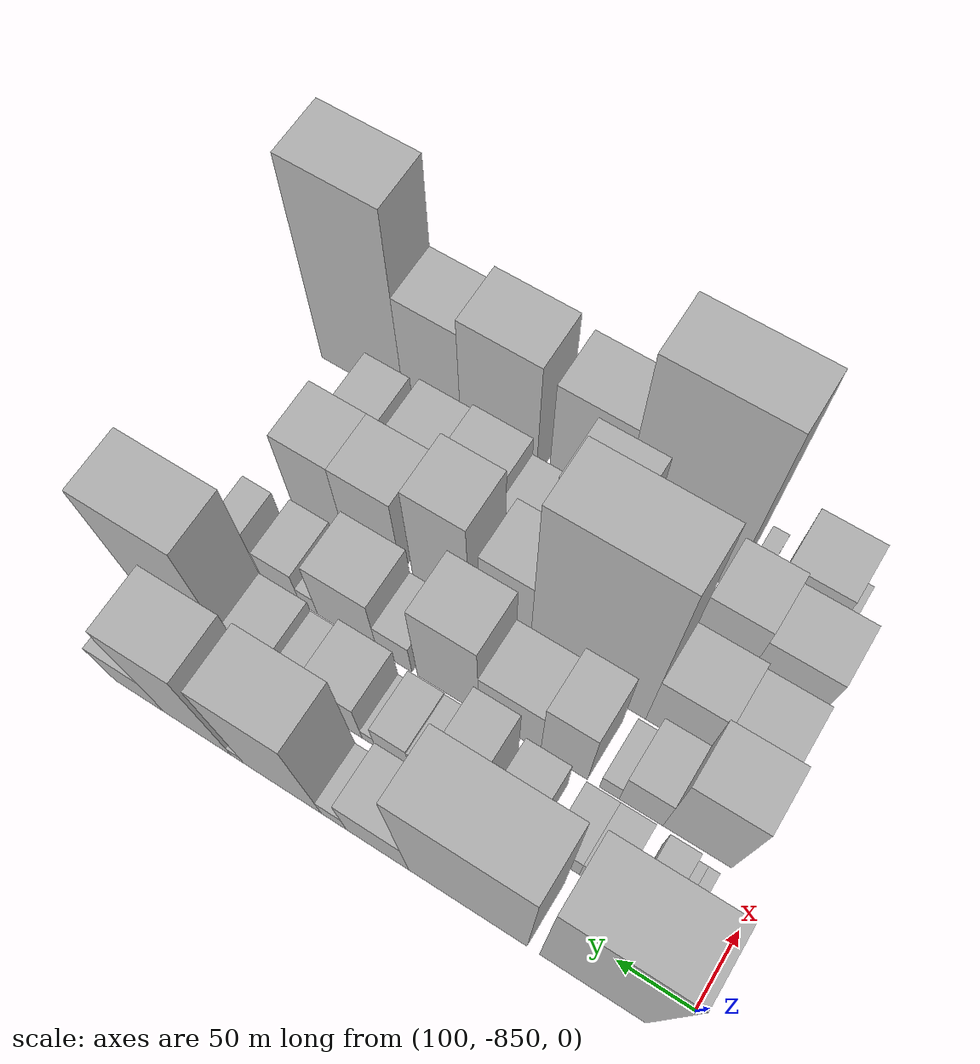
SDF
<sdf version="1.6">
 <world name="default">
  <model name="building_1">
   <static>1</static>
   <pose>100.0000 -796.0572 0 0.000000 0.000000 0.000000</pose>
   <link name="link">
    <pose>0 0 111.00 0 0 0</pose>
    <collision name="collision"><geometry><box><size>40.0000 67.8856 222.0000</size></box></geometry></collision>
    <visual name="visual">
     <cast_shadows>0</cast_shadows>
     <geometry><box><size>40.0000 67.8856 222.0000</size></box></geometry>
     <material>
      <script>
       <uri>model://HANNAS_wall/materials/scripts</uri>
       <uri>model://HANNAS_wall/materials/textures</uri>
       <name>vrc/HANNAS_wall</name>
      </script>
     </material>
    </visual>
   </link>
  </model>
  <model name="building_2">
   <static>1</static>
   <pose>100.0000 -714.7521 0 0.000000 0.000000 0.000000</pose>
   <link name="link">
    <pose>0 0 106.50 0 0 0</pose>
    <collision name="collision"><geometry><box><size>40.0000 78.7246 213.0000</size></box></geometry></collision>
    <visual name="visual">
     <cast_shadows>0</cast_shadows>
     <geometry><box><size>40.0000 78.7246 213.0000</size></box></geometry>
     <material>
      <script>
       <uri>model://HANNAS_wall/materials/scripts</uri>
       <uri>model://HANNAS_wall/materials/textures</uri>
       <name>vrc/HANNAS_wall</name>
      </script>
     </material>
    </visual>
   </link>
  </model>
  <model name="building_3">
   <static>1</static>
   <pose>100.0000 -654.1740 0 0.000000 0.000000 0.000000</pose>
   <link name="link">
    <pose>0 0 37.50 0 0 0</pose>
    <collision name="collision"><geometry><box><size>40.0000 42.4316 75.0000</size></box></geometry></collision>
    <visual name="visual">
     <cast_shadows>0</cast_shadows>
     <geometry><box><size>40.0000 42.4316 75.0000</size></box></geometry>
     <material>
      <script>
       <uri>model://HANNAS_wall/materials/scripts</uri>
       <uri>model://HANNAS_wall/materials/textures</uri>
       <name>vrc/HANNAS_wall</name>
      </script>
     </material>
    </visual>
   </link>
  </model>
  <model name="building_4">
   <static>1</static>
   <pose>100.0000 -624.2647 0 0.000000 0.000000 0.000000</pose>
   <link name="link">
    <pose>0 0 16.50 0 0 0</pose>
    <collision name="collision"><geometry><box><size>40.0000 17.3870 33.0000</size></box></geometry></collision>
    <visual name="visual">
     <cast_shadows>0</cast_shadows>
     <geometry><box><size>40.0000 17.3870 33.0000</size></box></geometry>
     <material>
      <script>
       <uri>model://HANNAS_wall/materials/scripts</uri>
       <uri>model://HANNAS_wall/materials/textures</uri>
       <name>vrc/HANNAS_wall</name>
      </script>
     </material>
    </visual>
   </link>
  </model>
  <model name="building_5">
   <static>1</static>
   <pose>100.0000 -588.1427 0 0.000000 0.000000 0.000000</pose>
   <link name="link">
    <pose>0 0 81.00 0 0 0</pose>
    <collision name="collision"><geometry><box><size>40.0000 54.8569 162.0000</size></box></geometry></collision>
    <visual name="visual">
     <cast_shadows>0</cast_shadows>
     <geometry><box><size>40.0000 54.8569 162.0000</size></box></geometry>
     <material>
      <script>
       <uri>model://HANNAS_wall/materials/scripts</uri>
       <uri>model://HANNAS_wall/materials/textures</uri>
       <name>vrc/HANNAS_wall</name>
      </script>
     </material>
    </visual>
   </link>
  </model>
  <model name="building_6">
   <static>1</static>
   <pose>100.0000 -556.2341 0 0.000000 0.000000 0.000000</pose>
   <link name="link">
    <pose>0 0 9.00 0 0 0</pose>
    <collision name="collision"><geometry><box><size>40.0000 8.9603 18.0000</size></box></geometry></collision>
    <visual name="visual">
     <cast_shadows>0</cast_shadows>
     <geometry><box><size>40.0000 8.9603 18.0000</size></box></geometry>
     <material>
      <script>
       <uri>model://HANNAS_wall/materials/scripts</uri>
       <uri>model://HANNAS_wall/materials/textures</uri>
       <name>vrc/HANNAS_wall</name>
      </script>
     </material>
    </visual>
   </link>
  </model>
  <model name="building_7">
   <static>1</static>
   <pose>100.0000 -527.5284 0 0.000000 0.000000 0.000000</pose>
   <link name="link">
    <pose>0 0 79.50 0 0 0</pose>
    <collision name="collision"><geometry><box><size>40.0000 48.4513 159.0000</size></box></geometry></collision>
    <visual name="visual">
     <cast_shadows>0</cast_shadows>
     <geometry><box><size>40.0000 48.4513 159.0000</size></box></geometry>
     <material>
      <script>
       <uri>model://HANNAS_wall/materials/scripts</uri>
       <uri>model://HANNAS_wall/materials/textures</uri>
       <name>vrc/HANNAS_wall</name>
      </script>
     </material>
    </visual>
   </link>
  </model>
  <model name="building_8">
   <static>1</static>
   <pose>100.0000 -484.7975 0 0.000000 0.000000 0.000000</pose>
   <link name="link">
    <pose>0 0 33.00 0 0 0</pose>
    <collision name="collision"><geometry><box><size>40.0000 37.0104 66.0000</size></box></geometry></collision>
    <visual name="visual">
     <cast_shadows>0</cast_shadows>
     <geometry><box><size>40.0000 37.0104 66.0000</size></box></geometry>
     <material>
      <script>
       <uri>model://HANNAS_wall/materials/scripts</uri>
       <uri>model://HANNAS_wall/materials/textures</uri>
       <name>vrc/HANNAS_wall</name>
      </script>
     </material>
    </visual>
   </link>
  </model>
  <model name="building_56">
   <static>1</static>
   <pose>149.0000 -821.3005 0 0.000000 0.000000 0.000000</pose>
   <link name="link">
    <pose>0 0 7.50 0 0 0</pose>
    <collision name="collision"><geometry><box><size>40.0000 7.3990 15.0000</size></box></geometry></collision>
    <visual name="visual">
     <cast_shadows>0</cast_shadows>
     <geometry><box><size>40.0000 7.3990 15.0000</size></box></geometry>
     <material>
      <script>
       <uri>model://HANNAS_wall/materials/scripts</uri>
       <uri>model://HANNAS_wall/materials/textures</uri>
       <name>vrc/HANNAS_wall</name>
      </script>
     </material>
    </visual>
   </link>
  </model>
  <model name="building_57">
   <static>1</static>
   <pose>149.0000 -813.9377 0 0.000000 0.000000 0.000000</pose>
   <link name="link">
    <pose>0 0 7.50 0 0 0</pose>
    <collision name="collision"><geometry><box><size>40.0000 7.3267 15.0000</size></box></geometry></collision>
    <visual name="visual">
     <cast_shadows>0</cast_shadows>
     <geometry><box><size>40.0000 7.3267 15.0000</size></box></geometry>
     <material>
      <script>
       <uri>model://HANNAS_wall/materials/scripts</uri>
       <uri>model://HANNAS_wall/materials/textures</uri>
       <name>vrc/HANNAS_wall</name>
      </script>
     </material>
    </visual>
   </link>
  </model>
  <model name="building_58">
   <static>1</static>
   <pose>149.0000 -800.3064 0 0.000000 0.000000 0.000000</pose>
   <link name="link">
    <pose>0 0 18.00 0 0 0</pose>
    <collision name="collision"><geometry><box><size>40.0000 19.9360 36.0000</size></box></geometry></collision>
    <visual name="visual">
     <cast_shadows>0</cast_shadows>
     <geometry><box><size>40.0000 19.9360 36.0000</size></box></geometry>
     <material>
      <script>
       <uri>model://HANNAS_wall/materials/scripts</uri>
       <uri>model://HANNAS_wall/materials/textures</uri>
       <name>vrc/HANNAS_wall</name>
      </script>
     </material>
    </visual>
   </link>
  </model>
  <model name="building_59">
   <static>1</static>
   <pose>149.0000 -769.9749 0 0.000000 0.000000 0.000000</pose>
   <link name="link">
    <pose>0 0 19.50 0 0 0</pose>
    <collision name="collision"><geometry><box><size>40.0000 22.7270 39.0000</size></box></geometry></collision>
    <visual name="visual">
     <cast_shadows>0</cast_shadows>
     <geometry><box><size>40.0000 22.7270 39.0000</size></box></geometry>
     <material>
      <script>
       <uri>model://HANNAS_wall/materials/scripts</uri>
       <uri>model://HANNAS_wall/materials/textures</uri>
       <name>vrc/HANNAS_wall</name>
      </script>
     </material>
    </visual>
   </link>
  </model>
  <model name="building_60">
   <static>1</static>
   <pose>149.0000 -747.7355 0 0.000000 0.000000 0.000000</pose>
   <link name="link">
    <pose>0 0 19.50 0 0 0</pose>
    <collision name="collision"><geometry><box><size>40.0000 21.7517 39.0000</size></box></geometry></collision>
    <visual name="visual">
     <cast_shadows>0</cast_shadows>
     <geometry><box><size>40.0000 21.7517 39.0000</size></box></geometry>
     <material>
      <script>
       <uri>model://HANNAS_wall/materials/scripts</uri>
       <uri>model://HANNAS_wall/materials/textures</uri>
       <name>vrc/HANNAS_wall</name>
      </script>
     </material>
    </visual>
   </link>
  </model>
  <model name="building_61">
   <static>1</static>
   <pose>149.0000 -712.1185 0 0.000000 0.000000 0.000000</pose>
   <link name="link">
    <pose>0 0 27.00 0 0 0</pose>
    <collision name="collision"><geometry><box><size>40.0000 29.4824 54.0000</size></box></geometry></collision>
    <visual name="visual">
     <cast_shadows>0</cast_shadows>
     <geometry><box><size>40.0000 29.4824 54.0000</size></box></geometry>
     <material>
      <script>
       <uri>model://HANNAS_wall/materials/scripts</uri>
       <uri>model://HANNAS_wall/materials/textures</uri>
       <name>vrc/HANNAS_wall</name>
      </script>
     </material>
    </visual>
   </link>
  </model>
  <model name="building_62">
   <static>1</static>
   <pose>149.0000 -678.7876 0 0.000000 0.000000 0.000000</pose>
   <link name="link">
    <pose>0 0 48.00 0 0 0</pose>
    <collision name="collision"><geometry><box><size>40.0000 29.1794 96.0000</size></box></geometry></collision>
    <visual name="visual">
     <cast_shadows>0</cast_shadows>
     <geometry><box><size>40.0000 29.1794 96.0000</size></box></geometry>
     <material>
      <script>
       <uri>model://HANNAS_wall/materials/scripts</uri>
       <uri>model://HANNAS_wall/materials/textures</uri>
       <name>vrc/HANNAS_wall</name>
      </script>
     </material>
    </visual>
   </link>
  </model>
  <model name="building_63">
   <static>1</static>
   <pose>149.0000 -654.0382 0 0.000000 0.000000 0.000000</pose>
   <link name="link">
    <pose>0 0 19.50 0 0 0</pose>
    <collision name="collision"><geometry><box><size>40.0000 20.3195 39.0000</size></box></geometry></collision>
    <visual name="visual">
     <cast_shadows>0</cast_shadows>
     <geometry><box><size>40.0000 20.3195 39.0000</size></box></geometry>
     <material>
      <script>
       <uri>model://HANNAS_wall/materials/scripts</uri>
       <uri>model://HANNAS_wall/materials/textures</uri>
       <name>vrc/HANNAS_wall</name>
      </script>
     </material>
    </visual>
   </link>
  </model>
  <model name="building_64">
   <static>1</static>
   <pose>149.0000 -631.6424 0 0.000000 0.000000 0.000000</pose>
   <link name="link">
    <pose>0 0 21.00 0 0 0</pose>
    <collision name="collision"><geometry><box><size>40.0000 24.4722 42.0000</size></box></geometry></collision>
    <visual name="visual">
     <cast_shadows>0</cast_shadows>
     <geometry><box><size>40.0000 24.4722 42.0000</size></box></geometry>
     <material>
      <script>
       <uri>model://HANNAS_wall/materials/scripts</uri>
       <uri>model://HANNAS_wall/materials/textures</uri>
       <name>vrc/HANNAS_wall</name>
      </script>
     </material>
    </visual>
   </link>
  </model>
  <model name="building_65">
   <static>1</static>
   <pose>149.0000 -615.0078 0 0.000000 0.000000 0.000000</pose>
   <link name="link">
    <pose>0 0 9.00 0 0 0</pose>
    <collision name="collision"><geometry><box><size>40.0000 8.7971 18.0000</size></box></geometry></collision>
    <visual name="visual">
     <cast_shadows>0</cast_shadows>
     <geometry><box><size>40.0000 8.7971 18.0000</size></box></geometry>
     <material>
      <script>
       <uri>model://HANNAS_wall/materials/scripts</uri>
       <uri>model://HANNAS_wall/materials/textures</uri>
       <name>vrc/HANNAS_wall</name>
      </script>
     </material>
    </visual>
   </link>
  </model>
  <model name="building_66">
   <static>1</static>
   <pose>149.0000 -592.6483 0 0.000000 0.000000 0.000000</pose>
   <link name="link">
    <pose>0 0 31.50 0 0 0</pose>
    <collision name="collision"><geometry><box><size>40.0000 35.9217 63.0000</size></box></geometry></collision>
    <visual name="visual">
     <cast_shadows>0</cast_shadows>
     <geometry><box><size>40.0000 35.9217 63.0000</size></box></geometry>
     <material>
      <script>
       <uri>model://HANNAS_wall/materials/scripts</uri>
       <uri>model://HANNAS_wall/materials/textures</uri>
       <name>vrc/HANNAS_wall</name>
      </script>
     </material>
    </visual>
   </link>
  </model>
  <model name="building_67">
   <static>1</static>
   <pose>149.0000 -563.5514 0 0.000000 0.000000 0.000000</pose>
   <link name="link">
    <pose>0 0 21.00 0 0 0</pose>
    <collision name="collision"><geometry><box><size>40.0000 22.2722 42.0000</size></box></geometry></collision>
    <visual name="visual">
     <cast_shadows>0</cast_shadows>
     <geometry><box><size>40.0000 22.2722 42.0000</size></box></geometry>
     <material>
      <script>
       <uri>model://HANNAS_wall/materials/scripts</uri>
       <uri>model://HANNAS_wall/materials/textures</uri>
       <name>vrc/HANNAS_wall</name>
      </script>
     </material>
    </visual>
   </link>
  </model>
  <model name="building_68">
   <static>1</static>
   <pose>149.0000 -535.8548 0 0.000000 0.000000 0.000000</pose>
   <link name="link">
    <pose>0 0 28.50 0 0 0</pose>
    <collision name="collision"><geometry><box><size>40.0000 33.1210 57.0000</size></box></geometry></collision>
    <visual name="visual">
     <cast_shadows>0</cast_shadows>
     <geometry><box><size>40.0000 33.1210 57.0000</size></box></geometry>
     <material>
      <script>
       <uri>model://HANNAS_wall/materials/scripts</uri>
       <uri>model://HANNAS_wall/materials/textures</uri>
       <name>vrc/HANNAS_wall</name>
      </script>
     </material>
    </visual>
   </link>
  </model>
  <model name="building_69">
   <static>1</static>
   <pose>149.0000 -487.6769 0 0.000000 0.000000 0.000000</pose>
   <link name="link">
    <pose>0 0 87.00 0 0 0</pose>
    <collision name="collision"><geometry><box><size>40.0000 63.2347 174.0000</size></box></geometry></collision>
    <visual name="visual">
     <cast_shadows>0</cast_shadows>
     <geometry><box><size>40.0000 63.2347 174.0000</size></box></geometry>
     <material>
      <script>
       <uri>model://HANNAS_wall/materials/scripts</uri>
       <uri>model://HANNAS_wall/materials/textures</uri>
       <name>vrc/HANNAS_wall</name>
      </script>
     </material>
    </visual>
   </link>
  </model>
  <model name="building_114">
   <static>1</static>
   <pose>198.0000 -807.6028 0 0.000000 0.000000 0.000000</pose>
   <link name="link">
    <pose>0 0 58.50 0 0 0</pose>
    <collision name="collision"><geometry><box><size>40.0000 44.7943 117.0000</size></box></geometry></collision>
    <visual name="visual">
     <cast_shadows>0</cast_shadows>
     <geometry><box><size>40.0000 44.7943 117.0000</size></box></geometry>
     <material>
      <script>
       <uri>model://HANNAS_wall/materials/scripts</uri>
       <uri>model://HANNAS_wall/materials/textures</uri>
       <name>vrc/HANNAS_wall</name>
      </script>
     </material>
    </visual>
   </link>
  </model>
  <model name="building_115">
   <static>1</static>
   <pose>198.0000 -770.7115 0 0.000000 0.000000 0.000000</pose>
   <link name="link">
    <pose>0 0 28.50 0 0 0</pose>
    <collision name="collision"><geometry><box><size>40.0000 28.9883 57.0000</size></box></geometry></collision>
    <visual name="visual">
     <cast_shadows>0</cast_shadows>
     <geometry><box><size>40.0000 28.9883 57.0000</size></box></geometry>
     <material>
      <script>
       <uri>model://HANNAS_wall/materials/scripts</uri>
       <uri>model://HANNAS_wall/materials/textures</uri>
       <name>vrc/HANNAS_wall</name>
      </script>
     </material>
    </visual>
   </link>
  </model>
  <model name="building_116">
   <static>1</static>
   <pose>198.0000 -749.5972 0 0.000000 0.000000 0.000000</pose>
   <link name="link">
    <pose>0 0 13.50 0 0 0</pose>
    <collision name="collision"><geometry><box><size>40.0000 13.2402 27.0000</size></box></geometry></collision>
    <visual name="visual">
     <cast_shadows>0</cast_shadows>
     <geometry><box><size>40.0000 13.2402 27.0000</size></box></geometry>
     <material>
      <script>
       <uri>model://HANNAS_wall/materials/scripts</uri>
       <uri>model://HANNAS_wall/materials/textures</uri>
       <name>vrc/HANNAS_wall</name>
      </script>
     </material>
    </visual>
   </link>
  </model>
  <model name="building_117">
   <static>1</static>
   <pose>198.0000 -719.0356 0 0.000000 0.000000 0.000000</pose>
   <link name="link">
    <pose>0 0 48.00 0 0 0</pose>
    <collision name="collision"><geometry><box><size>40.0000 31.8829 96.0000</size></box></geometry></collision>
    <visual name="visual">
     <cast_shadows>0</cast_shadows>
     <geometry><box><size>40.0000 31.8829 96.0000</size></box></geometry>
     <material>
      <script>
       <uri>model://HANNAS_wall/materials/scripts</uri>
       <uri>model://HANNAS_wall/materials/textures</uri>
       <name>vrc/HANNAS_wall</name>
      </script>
     </material>
    </visual>
   </link>
  </model>
  <model name="building_118">
   <static>1</static>
   <pose>198.0000 -681.9346 0 0.000000 0.000000 0.000000</pose>
   <link name="link">
    <pose>0 0 37.50 0 0 0</pose>
    <collision name="collision"><geometry><box><size>40.0000 42.3192 75.0000</size></box></geometry></collision>
    <visual name="visual">
     <cast_shadows>0</cast_shadows>
     <geometry><box><size>40.0000 42.3192 75.0000</size></box></geometry>
     <material>
      <script>
       <uri>model://HANNAS_wall/materials/scripts</uri>
       <uri>model://HANNAS_wall/materials/textures</uri>
       <name>vrc/HANNAS_wall</name>
      </script>
     </material>
    </visual>
   </link>
  </model>
  <model name="building_119">
   <static>1</static>
   <pose>198.0000 -639.0371 0 0.000000 0.000000 0.000000</pose>
   <link name="link">
    <pose>0 0 60.00 0 0 0</pose>
    <collision name="collision"><geometry><box><size>40.0000 43.4757 120.0000</size></box></geometry></collision>
    <visual name="visual">
     <cast_shadows>0</cast_shadows>
     <geometry><box><size>40.0000 43.4757 120.0000</size></box></geometry>
     <material>
      <script>
       <uri>model://HANNAS_wall/materials/scripts</uri>
       <uri>model://HANNAS_wall/materials/textures</uri>
       <name>vrc/HANNAS_wall</name>
      </script>
     </material>
    </visual>
   </link>
  </model>
  <model name="building_120">
   <static>1</static>
   <pose>198.0000 -600.9243 0 0.000000 0.000000 0.000000</pose>
   <link name="link">
    <pose>0 0 22.50 0 0 0</pose>
    <collision name="collision"><geometry><box><size>40.0000 24.7499 45.0000</size></box></geometry></collision>
    <visual name="visual">
     <cast_shadows>0</cast_shadows>
     <geometry><box><size>40.0000 24.7499 45.0000</size></box></geometry>
     <material>
      <script>
       <uri>model://HANNAS_wall/materials/scripts</uri>
       <uri>model://HANNAS_wall/materials/textures</uri>
       <name>vrc/HANNAS_wall</name>
      </script>
     </material>
    </visual>
   </link>
  </model>
  <model name="building_121">
   <static>1</static>
   <pose>198.0000 -566.7464 0 0.000000 0.000000 0.000000</pose>
   <link name="link">
    <pose>0 0 40.50 0 0 0</pose>
    <collision name="collision"><geometry><box><size>40.0000 43.6058 81.0000</size></box></geometry></collision>
    <visual name="visual">
     <cast_shadows>0</cast_shadows>
     <geometry><box><size>40.0000 43.6058 81.0000</size></box></geometry>
     <material>
      <script>
       <uri>model://HANNAS_wall/materials/scripts</uri>
       <uri>model://HANNAS_wall/materials/textures</uri>
       <name>vrc/HANNAS_wall</name>
      </script>
     </material>
    </visual>
   </link>
  </model>
  <model name="building_122">
   <static>1</static>
   <pose>198.0000 -538.5956 0 0.000000 0.000000 0.000000</pose>
   <link name="link">
    <pose>0 0 13.50 0 0 0</pose>
    <collision name="collision"><geometry><box><size>40.0000 12.6959 27.0000</size></box></geometry></collision>
    <visual name="visual">
     <cast_shadows>0</cast_shadows>
     <geometry><box><size>40.0000 12.6959 27.0000</size></box></geometry>
     <material>
      <script>
       <uri>model://HANNAS_wall/materials/scripts</uri>
       <uri>model://HANNAS_wall/materials/textures</uri>
       <name>vrc/HANNAS_wall</name>
      </script>
     </material>
    </visual>
   </link>
  </model>
  <model name="building_123">
   <static>1</static>
   <pose>198.0000 -518.4218 0 0.000000 0.000000 0.000000</pose>
   <link name="link">
    <pose>0 0 24.00 0 0 0</pose>
    <collision name="collision"><geometry><box><size>40.0000 27.6515 48.0000</size></box></geometry></collision>
    <visual name="visual">
     <cast_shadows>0</cast_shadows>
     <geometry><box><size>40.0000 27.6515 48.0000</size></box></geometry>
     <material>
      <script>
       <uri>model://HANNAS_wall/materials/scripts</uri>
       <uri>model://HANNAS_wall/materials/textures</uri>
       <name>vrc/HANNAS_wall</name>
      </script>
     </material>
    </visual>
   </link>
  </model>
  <model name="building_124">
   <static>1</static>
   <pose>198.0000 -499.5554 0 0.000000 0.000000 0.000000</pose>
   <link name="link">
    <pose>0 0 10.50 0 0 0</pose>
    <collision name="collision"><geometry><box><size>40.0000 10.0814 21.0000</size></box></geometry></collision>
    <visual name="visual">
     <cast_shadows>0</cast_shadows>
     <geometry><box><size>40.0000 10.0814 21.0000</size></box></geometry>
     <material>
      <script>
       <uri>model://HANNAS_wall/materials/scripts</uri>
       <uri>model://HANNAS_wall/materials/textures</uri>
       <name>vrc/HANNAS_wall</name>
      </script>
     </material>
    </visual>
   </link>
  </model>
  <model name="building_125">
   <static>1</static>
   <pose>198.0000 -478.9829 0 0.000000 0.000000 0.000000</pose>
   <link name="link">
    <pose>0 0 19.50 0 0 0</pose>
    <collision name="collision"><geometry><box><size>40.0000 21.0635 39.0000</size></box></geometry></collision>
    <visual name="visual">
     <cast_shadows>0</cast_shadows>
     <geometry><box><size>40.0000 21.0635 39.0000</size></box></geometry>
     <material>
      <script>
       <uri>model://HANNAS_wall/materials/scripts</uri>
       <uri>model://HANNAS_wall/materials/textures</uri>
       <name>vrc/HANNAS_wall</name>
      </script>
     </material>
    </visual>
   </link>
  </model>
  <model name="building_161">
   <static>1</static>
   <pose>247.0000 -809.8048 0 0.000000 0.000000 0.000000</pose>
   <link name="link">
    <pose>0 0 36.00 0 0 0</pose>
    <collision name="collision"><geometry><box><size>40.0000 40.3903 72.0000</size></box></geometry></collision>
    <visual name="visual">
     <cast_shadows>0</cast_shadows>
     <geometry><box><size>40.0000 40.3903 72.0000</size></box></geometry>
     <material>
      <script>
       <uri>model://HANNAS_wall/materials/scripts</uri>
       <uri>model://HANNAS_wall/materials/textures</uri>
       <name>vrc/HANNAS_wall</name>
      </script>
     </material>
    </visual>
   </link>
  </model>
  <model name="building_162">
   <static>1</static>
   <pose>247.0000 -767.6513 0 0.000000 0.000000 0.000000</pose>
   <link name="link">
    <pose>0 0 40.50 0 0 0</pose>
    <collision name="collision"><geometry><box><size>40.0000 43.9168 81.0000</size></box></geometry></collision>
    <visual name="visual">
     <cast_shadows>0</cast_shadows>
     <geometry><box><size>40.0000 43.9168 81.0000</size></box></geometry>
     <material>
      <script>
       <uri>model://HANNAS_wall/materials/scripts</uri>
       <uri>model://HANNAS_wall/materials/textures</uri>
       <name>vrc/HANNAS_wall</name>
      </script>
     </material>
    </visual>
   </link>
  </model>
  <model name="building_163">
   <static>1</static>
   <pose>247.0000 -705.6306 0 0.000000 0.000000 0.000000</pose>
   <link name="link">
    <pose>0 0 111.00 0 0 0</pose>
    <collision name="collision"><geometry><box><size>40.0000 80.1246 222.0000</size></box></geometry></collision>
    <visual name="visual">
     <cast_shadows>0</cast_shadows>
     <geometry><box><size>40.0000 80.1246 222.0000</size></box></geometry>
     <material>
      <script>
       <uri>model://HANNAS_wall/materials/scripts</uri>
       <uri>model://HANNAS_wall/materials/textures</uri>
       <name>vrc/HANNAS_wall</name>
      </script>
     </material>
    </visual>
   </link>
  </model>
  <model name="building_164">
   <static>1</static>
   <pose>247.0000 -647.9016 0 0.000000 0.000000 0.000000</pose>
   <link name="link">
    <pose>0 0 54.00 0 0 0</pose>
    <collision name="collision"><geometry><box><size>40.0000 35.3334 108.0000</size></box></geometry></collision>
    <visual name="visual">
     <cast_shadows>0</cast_shadows>
     <geometry><box><size>40.0000 35.3334 108.0000</size></box></geometry>
     <material>
      <script>
       <uri>model://HANNAS_wall/materials/scripts</uri>
       <uri>model://HANNAS_wall/materials/textures</uri>
       <name>vrc/HANNAS_wall</name>
      </script>
     </material>
    </visual>
   </link>
  </model>
  <model name="building_165">
   <static>1</static>
   <pose>247.0000 -602.8267 0 0.000000 0.000000 0.000000</pose>
   <link name="link">
    <pose>0 0 67.50 0 0 0</pose>
    <collision name="collision"><geometry><box><size>40.0000 40.8166 135.0000</size></box></geometry></collision>
    <visual name="visual">
     <cast_shadows>0</cast_shadows>
     <geometry><box><size>40.0000 40.8166 135.0000</size></box></geometry>
     <material>
      <script>
       <uri>model://HANNAS_wall/materials/scripts</uri>
       <uri>model://HANNAS_wall/materials/textures</uri>
       <name>vrc/HANNAS_wall</name>
      </script>
     </material>
    </visual>
   </link>
  </model>
  <model name="building_166">
   <static>1</static>
   <pose>247.0000 -552.7730 0 0.000000 0.000000 0.000000</pose>
   <link name="link">
    <pose>0 0 52.50 0 0 0</pose>
    <collision name="collision"><geometry><box><size>40.0000 41.2906 105.0000</size></box></geometry></collision>
    <visual name="visual">
     <cast_shadows>0</cast_shadows>
     <geometry><box><size>40.0000 41.2906 105.0000</size></box></geometry>
     <material>
      <script>
       <uri>model://HANNAS_wall/materials/scripts</uri>
       <uri>model://HANNAS_wall/materials/textures</uri>
       <name>vrc/HANNAS_wall</name>
      </script>
     </material>
    </visual>
   </link>
  </model>
  <model name="building_167">
   <static>1</static>
   <pose>247.0000 -512.7693 0 0.000000 0.000000 0.000000</pose>
   <link name="link">
    <pose>0 0 52.50 0 0 0</pose>
    <collision name="collision"><geometry><box><size>40.0000 38.7169 105.0000</size></box></geometry></collision>
    <visual name="visual">
     <cast_shadows>0</cast_shadows>
     <geometry><box><size>40.0000 38.7169 105.0000</size></box></geometry>
     <material>
      <script>
       <uri>model://HANNAS_wall/materials/scripts</uri>
       <uri>model://HANNAS_wall/materials/textures</uri>
       <name>vrc/HANNAS_wall</name>
      </script>
     </material>
    </visual>
   </link>
  </model>
  <model name="building_204">
   <static>1</static>
   <pose>296.0000 -806.8379 0 0.000000 0.000000 0.000000</pose>
   <link name="link">
    <pose>0 0 42.00 0 0 0</pose>
    <collision name="collision"><geometry><box><size>40.0000 46.3241 84.0000</size></box></geometry></collision>
    <visual name="visual">
     <cast_shadows>0</cast_shadows>
     <geometry><box><size>40.0000 46.3241 84.0000</size></box></geometry>
     <material>
      <script>
       <uri>model://HANNAS_wall/materials/scripts</uri>
       <uri>model://HANNAS_wall/materials/textures</uri>
       <name>vrc/HANNAS_wall</name>
      </script>
     </material>
    </visual>
   </link>
  </model>
  <model name="building_205">
   <static>1</static>
   <pose>296.0000 -764.2591 0 0.000000 0.000000 0.000000</pose>
   <link name="link">
    <pose>0 0 49.50 0 0 0</pose>
    <collision name="collision"><geometry><box><size>40.0000 38.8336 99.0000</size></box></geometry></collision>
    <visual name="visual">
     <cast_shadows>0</cast_shadows>
     <geometry><box><size>40.0000 38.8336 99.0000</size></box></geometry>
     <material>
      <script>
       <uri>model://HANNAS_wall/materials/scripts</uri>
       <uri>model://HANNAS_wall/materials/textures</uri>
       <name>vrc/HANNAS_wall</name>
      </script>
     </material>
    </visual>
   </link>
  </model>
  <model name="building_206">
   <static>1</static>
   <pose>296.0000 -741.4486 0 0.000000 0.000000 0.000000</pose>
   <link name="link">
    <pose>0 0 7.50 0 0 0</pose>
    <collision name="collision"><geometry><box><size>40.0000 6.7875 15.0000</size></box></geometry></collision>
    <visual name="visual">
     <cast_shadows>0</cast_shadows>
     <geometry><box><size>40.0000 6.7875 15.0000</size></box></geometry>
     <material>
      <script>
       <uri>model://HANNAS_wall/materials/scripts</uri>
       <uri>model://HANNAS_wall/materials/textures</uri>
       <name>vrc/HANNAS_wall</name>
      </script>
     </material>
    </visual>
   </link>
  </model>
  <model name="building_207">
   <static>1</static>
   <pose>296.0000 -724.5780 0 0.000000 0.000000 0.000000</pose>
   <link name="link">
    <pose>0 0 25.50 0 0 0</pose>
    <collision name="collision"><geometry><box><size>40.0000 26.9537 51.0000</size></box></geometry></collision>
    <visual name="visual">
     <cast_shadows>0</cast_shadows>
     <geometry><box><size>40.0000 26.9537 51.0000</size></box></geometry>
     <material>
      <script>
       <uri>model://HANNAS_wall/materials/scripts</uri>
       <uri>model://HANNAS_wall/materials/textures</uri>
       <name>vrc/HANNAS_wall</name>
      </script>
     </material>
    </visual>
   </link>
  </model>
  <model name="building_208">
   <static>1</static>
   <pose>296.0000 -702.1448 0 0.000000 0.000000 0.000000</pose>
   <link name="link">
    <pose>0 0 15.00 0 0 0</pose>
    <collision name="collision"><geometry><box><size>40.0000 17.9128 30.0000</size></box></geometry></collision>
    <visual name="visual">
     <cast_shadows>0</cast_shadows>
     <geometry><box><size>40.0000 17.9128 30.0000</size></box></geometry>
     <material>
      <script>
       <uri>model://HANNAS_wall/materials/scripts</uri>
       <uri>model://HANNAS_wall/materials/textures</uri>
       <name>vrc/HANNAS_wall</name>
      </script>
     </material>
    </visual>
   </link>
  </model>
  <model name="building_209">
   <static>1</static>
   <pose>296.0000 -671.2089 0 0.000000 0.000000 0.000000</pose>
   <link name="link">
    <pose>0 0 70.50 0 0 0</pose>
    <collision name="collision"><geometry><box><size>40.0000 43.9589 141.0000</size></box></geometry></collision>
    <visual name="visual">
     <cast_shadows>0</cast_shadows>
     <geometry><box><size>40.0000 43.9589 141.0000</size></box></geometry>
     <material>
      <script>
       <uri>model://HANNAS_wall/materials/scripts</uri>
       <uri>model://HANNAS_wall/materials/textures</uri>
       <name>vrc/HANNAS_wall</name>
      </script>
     </material>
    </visual>
   </link>
  </model>
  <model name="building_210">
   <static>1</static>
   <pose>296.0000 -625.3815 0 0.000000 0.000000 0.000000</pose>
   <link name="link">
    <pose>0 0 27.00 0 0 0</pose>
    <collision name="collision"><geometry><box><size>40.0000 27.6960 54.0000</size></box></geometry></collision>
    <visual name="visual">
     <cast_shadows>0</cast_shadows>
     <geometry><box><size>40.0000 27.6960 54.0000</size></box></geometry>
     <material>
      <script>
       <uri>model://HANNAS_wall/materials/scripts</uri>
       <uri>model://HANNAS_wall/materials/textures</uri>
       <name>vrc/HANNAS_wall</name>
      </script>
     </material>
    </visual>
   </link>
  </model>
  <model name="building_211">
   <static>1</static>
   <pose>296.0000 -590.8791 0 0.000000 0.000000 0.000000</pose>
   <link name="link">
    <pose>0 0 37.50 0 0 0</pose>
    <collision name="collision"><geometry><box><size>40.0000 41.3087 75.0000</size></box></geometry></collision>
    <visual name="visual">
     <cast_shadows>0</cast_shadows>
     <geometry><box><size>40.0000 41.3087 75.0000</size></box></geometry>
     <material>
      <script>
       <uri>model://HANNAS_wall/materials/scripts</uri>
       <uri>model://HANNAS_wall/materials/textures</uri>
       <name>vrc/HANNAS_wall</name>
      </script>
     </material>
    </visual>
   </link>
  </model>
  <model name="building_212">
   <static>1</static>
   <pose>296.0000 -551.3963 0 0.000000 0.000000 0.000000</pose>
   <link name="link">
    <pose>0 0 34.50 0 0 0</pose>
    <collision name="collision"><geometry><box><size>40.0000 37.6570 69.0000</size></box></geometry></collision>
    <visual name="visual">
     <cast_shadows>0</cast_shadows>
     <geometry><box><size>40.0000 37.6570 69.0000</size></box></geometry>
     <material>
      <script>
       <uri>model://HANNAS_wall/materials/scripts</uri>
       <uri>model://HANNAS_wall/materials/textures</uri>
       <name>vrc/HANNAS_wall</name>
      </script>
     </material>
    </visual>
   </link>
  </model>
  <model name="building_213">
   <static>1</static>
   <pose>296.0000 -528.9272 0 0.000000 0.000000 0.000000</pose>
   <link name="link">
    <pose>0 0 9.00 0 0 0</pose>
    <collision name="collision"><geometry><box><size>40.0000 7.2813 18.0000</size></box></geometry></collision>
    <visual name="visual">
     <cast_shadows>0</cast_shadows>
     <geometry><box><size>40.0000 7.2813 18.0000</size></box></geometry>
     <material>
      <script>
       <uri>model://HANNAS_wall/materials/scripts</uri>
       <uri>model://HANNAS_wall/materials/textures</uri>
       <name>vrc/HANNAS_wall</name>
      </script>
     </material>
    </visual>
   </link>
  </model>
  <model name="building_214">
   <static>1</static>
   <pose>296.0000 -509.1406 0 0.000000 0.000000 0.000000</pose>
   <link name="link">
    <pose>0 0 31.50 0 0 0</pose>
    <collision name="collision"><geometry><box><size>40.0000 32.2918 63.0000</size></box></geometry></collision>
    <visual name="visual">
     <cast_shadows>0</cast_shadows>
     <geometry><box><size>40.0000 32.2918 63.0000</size></box></geometry>
     <material>
      <script>
       <uri>model://HANNAS_wall/materials/scripts</uri>
       <uri>model://HANNAS_wall/materials/textures</uri>
       <name>vrc/HANNAS_wall</name>
      </script>
     </material>
    </visual>
   </link>
  </model>
  <model name="building_254">
   <static>1</static>
   <pose>345.0000 -817.9672 0 0.000000 0.000000 0.000000</pose>
   <link name="link">
    <pose>0 0 9.00 0 0 0</pose>
    <collision name="collision"><geometry><box><size>40.0000 8.0656 18.0000</size></box></geometry></collision>
    <visual name="visual">
     <cast_shadows>0</cast_shadows>
     <geometry><box><size>40.0000 8.0656 18.0000</size></box></geometry>
     <material>
      <script>
       <uri>model://HANNAS_wall/materials/scripts</uri>
       <uri>model://HANNAS_wall/materials/textures</uri>
       <name>vrc/HANNAS_wall</name>
      </script>
     </material>
    </visual>
   </link>
  </model>
  <model name="building_255">
   <static>1</static>
   <pose>345.0000 -792.8994 0 0.000000 0.000000 0.000000</pose>
   <link name="link">
    <pose>0 0 37.50 0 0 0</pose>
    <collision name="collision"><geometry><box><size>40.0000 42.0700 75.0000</size></box></geometry></collision>
    <visual name="visual">
     <cast_shadows>0</cast_shadows>
     <geometry><box><size>40.0000 42.0700 75.0000</size></box></geometry>
     <material>
      <script>
       <uri>model://HANNAS_wall/materials/scripts</uri>
       <uri>model://HANNAS_wall/materials/textures</uri>
       <name>vrc/HANNAS_wall</name>
      </script>
     </material>
    </visual>
   </link>
  </model>
  <model name="building_256">
   <static>1</static>
   <pose>345.0000 -758.2741 0 0.000000 0.000000 0.000000</pose>
   <link name="link">
    <pose>0 0 12.00 0 0 0</pose>
    <collision name="collision"><geometry><box><size>40.0000 11.1806 24.0000</size></box></geometry></collision>
    <visual name="visual">
     <cast_shadows>0</cast_shadows>
     <geometry><box><size>40.0000 11.1806 24.0000</size></box></geometry>
     <material>
      <script>
       <uri>model://HANNAS_wall/materials/scripts</uri>
       <uri>model://HANNAS_wall/materials/textures</uri>
       <name>vrc/HANNAS_wall</name>
      </script>
     </material>
    </visual>
   </link>
  </model>
  <model name="building_257">
   <static>1</static>
   <pose>345.0000 -709.2799 0 0.000000 0.000000 0.000000</pose>
   <link name="link">
    <pose>0 0 106.50 0 0 0</pose>
    <collision name="collision"><geometry><box><size>40.0000 78.8078 213.0000</size></box></geometry></collision>
    <visual name="visual">
     <cast_shadows>0</cast_shadows>
     <geometry><box><size>40.0000 78.8078 213.0000</size></box></geometry>
     <material>
      <script>
       <uri>model://HANNAS_wall/materials/scripts</uri>
       <uri>model://HANNAS_wall/materials/textures</uri>
       <name>vrc/HANNAS_wall</name>
      </script>
     </material>
    </visual>
   </link>
  </model>
  <model name="building_258">
   <static>1</static>
   <pose>345.0000 -644.4354 0 0.000000 0.000000 0.000000</pose>
   <link name="link">
    <pose>0 0 66.00 0 0 0</pose>
    <collision name="collision"><geometry><box><size>40.0000 50.8811 132.0000</size></box></geometry></collision>
    <visual name="visual">
     <cast_shadows>0</cast_shadows>
     <geometry><box><size>40.0000 50.8811 132.0000</size></box></geometry>
     <material>
      <script>
       <uri>model://HANNAS_wall/materials/scripts</uri>
       <uri>model://HANNAS_wall/materials/textures</uri>
       <name>vrc/HANNAS_wall</name>
      </script>
     </material>
    </visual>
   </link>
  </model>
  <model name="building_259">
   <static>1</static>
   <pose>345.0000 -582.1909 0 0.000000 0.000000 0.000000</pose>
   <link name="link">
    <pose>0 0 70.50 0 0 0</pose>
    <collision name="collision"><geometry><box><size>40.0000 55.6080 141.0000</size></box></geometry></collision>
    <visual name="visual">
     <cast_shadows>0</cast_shadows>
     <geometry><box><size>40.0000 55.6080 141.0000</size></box></geometry>
     <material>
      <script>
       <uri>model://HANNAS_wall/materials/scripts</uri>
       <uri>model://HANNAS_wall/materials/textures</uri>
       <name>vrc/HANNAS_wall</name>
      </script>
     </material>
    </visual>
   </link>
  </model>
  <model name="building_260">
   <static>1</static>
   <pose>345.0000 -532.7425 0 0.000000 0.000000 0.000000</pose>
   <link name="link">
    <pose>0 0 63.00 0 0 0</pose>
    <collision name="collision"><geometry><box><size>40.0000 43.2888 126.0000</size></box></geometry></collision>
    <visual name="visual">
     <cast_shadows>0</cast_shadows>
     <geometry><box><size>40.0000 43.2888 126.0000</size></box></geometry>
     <material>
      <script>
       <uri>model://HANNAS_wall/materials/scripts</uri>
       <uri>model://HANNAS_wall/materials/textures</uri>
       <name>vrc/HANNAS_wall</name>
      </script>
     </material>
    </visual>
   </link>
  </model>
  <model name="building_261">
   <static>1</static>
   <pose>345.0000 -478.7592 0 0.000000 0.000000 0.000000</pose>
   <link name="link">
    <pose>0 0 103.50 0 0 0</pose>
    <collision name="collision"><geometry><box><size>40.0000 64.6778 207.0000</size></box></geometry></collision>
    <visual name="visual">
     <cast_shadows>0</cast_shadows>
     <geometry><box><size>40.0000 64.6778 207.0000</size></box></geometry>
     <material>
      <script>
       <uri>model://HANNAS_wall/materials/scripts</uri>
       <uri>model://HANNAS_wall/materials/textures</uri>
       <name>vrc/HANNAS_wall</name>
      </script>
     </material>
    </visual>
   </link>
  </model>
 </world>
</sdf>
